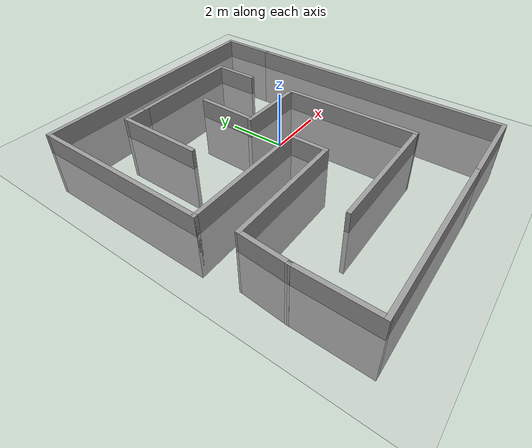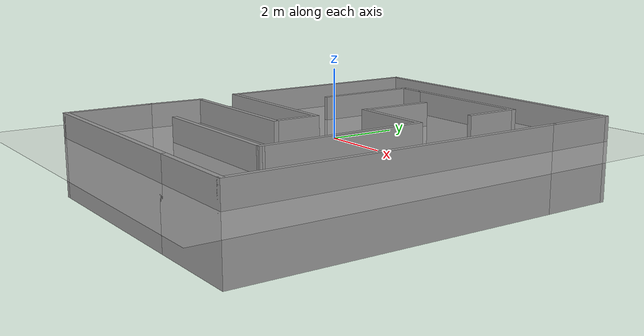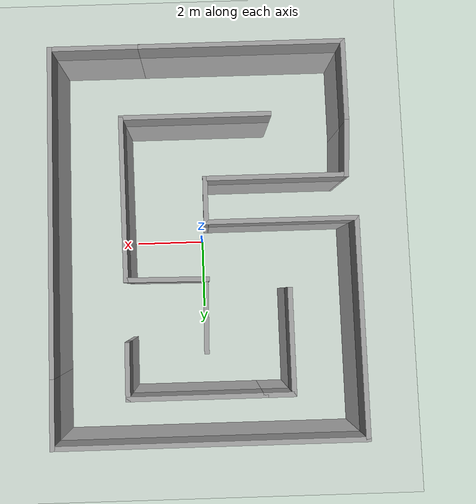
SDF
<sdf version="1.7">
 <world name="default">
  <light name="sun" type="directional">
   <pose>0 0 10 0 -0 0</pose>
   <diffuse>0.8 0.8 0.8 1</diffuse>
   <specular>0.2 0.2 0.2 1</specular>
   <attenuation>
    <range>1000</range>
    <constant>0.9</constant>
    <linear>0.01</linear>
    <quadratic>0.001</quadratic>
   </attenuation>
   <direction>-0.5 0.1 -0.9</direction>
   <spot><inner_angle>0</inner_angle><outer_angle>0</outer_angle><falloff>0</falloff></spot>
  </light>
  <model name="ground_plane">
   <static>1</static>
   <link name="link">
    <collision name="collision">
     <geometry><plane><normal>0 0 1</normal><size>100 100</size></plane></geometry>
     <surface>
      <contact><collide_bitmask>65535</collide_bitmask></contact>
      <friction><ode><mu>100</mu><mu2>50</mu2></ode></friction>
     </surface>
    </collision>
    <visual name="visual">
     <cast_shadows>0</cast_shadows>
     <geometry><plane><normal>0 0 1</normal><size>100 100</size></plane></geometry>
     <material>
      <script><uri>file://media/materials/scripts/gazebo.material</uri><name>Gazebo/Grey</name></script>
     </material>
    </visual>
   </link>
  </model>
  <gravity>0 0 -9.8</gravity>
  <magnetic_field>6e-06 2.3e-05 -4.2e-05</magnetic_field>
  <atmosphere type="adiabatic"/>
  <physics type="ode">
   <max_step_size>0.001</max_step_size>
   <real_time_factor>1</real_time_factor>
   <real_time_update_rate>1000</real_time_update_rate>
  </physics>
  <scene><ambient>0.4 0.4 0.4 1</ambient><background>0.7 0.7 0.7 1</background><shadows>1</shadows></scene>
  <spherical_coordinates>
   <surface_model>EARTH_WGS84</surface_model>
   <latitude_deg>0</latitude_deg>
   <longitude_deg>0</longitude_deg>
   <elevation>0</elevation>
   <heading_deg>0</heading_deg>
  </spherical_coordinates>
  <model name="first_track">
   <pose>-0.063004 -0.050072 -1.78997 0 -0 0</pose>
   <link name="Wall_1">
    <collision name="Wall_1_Collision">
     <geometry><box><size>2.75 0.15 2.5</size></box></geometry>
     <pose>0 0 1.25 0 -0 0</pose>
    </collision>
    <visual name="Wall_1_Visual">
     <pose>0 0 1.25 0 -0 0</pose>
     <geometry><box><size>2.75 0.15 2.5</size></box></geometry>
     <material>
      <script><uri>file://media/materials/scripts/gazebo.material</uri><name>Gazebo/Grey</name></script>
      <ambient>1 1 1 1</ambient>
     </material>
     <meta><layer>0</layer></meta>
    </visual>
    <pose>-4.525 -4.8 0 0 -0 -1.5708</pose>
   </link>
   <link name="Wall_19">
    <collision name="Wall_19_Collision">
     <geometry><box><size>5.18013 0.15 2.5</size></box></geometry>
     <pose>0 0 1.25 0 -0 0</pose>
    </collision>
    <visual name="Wall_19_Visual">
     <pose>0 0 1.25 0 -0 0</pose>
     <geometry><box><size>5.18013 0.15 2.5</size></box></geometry>
     <material>
      <script><uri>file://media/materials/scripts/gazebo.material</uri><name>Gazebo/Grey</name></script>
      <ambient>1 1 1 1</ambient>
     </material>
     <meta><layer>0</layer></meta>
    </visual>
    <pose>2.44585 -1.31908 0 0 -0 1.58478</pose>
   </link>
   <link name="Wall_2">
    <collision name="Wall_2_Collision">
     <geometry><box><size>6.5 0.15 2.5</size></box></geometry>
     <pose>0 0 1.25 0 -0 0</pose>
    </collision>
    <visual name="Wall_2_Visual">
     <pose>0 0 1.25 0 -0 0</pose>
     <geometry><box><size>6.5 0.15 2.5</size></box></geometry>
     <material>
      <script><uri>file://media/materials/scripts/gazebo.material</uri><name>Gazebo/Grey</name></script>
      <ambient>1 1 1 1</ambient>
     </material>
     <meta><layer>0</layer></meta>
    </visual>
    <pose>-1.35 -6.1 0 0 -0 0</pose>
   </link>
   <link name="Wall_20">
    <collision name="Wall_20_Collision">
     <geometry><box><size>2.57061 0.15 2.5</size></box></geometry>
     <pose>0 0 1.25 0 -0 0</pose>
    </collision>
    <visual name="Wall_20_Visual">
     <pose>0 0 1.25 0 -0 0</pose>
     <geometry><box><size>2.57061 0.15 2.5</size></box></geometry>
     <material>
      <script><uri>file://media/materials/scripts/gazebo.material</uri><name>Gazebo/Grey</name></script>
      <ambient>1 1 1 1</ambient>
     </material>
     <meta><layer>0</layer></meta>
    </visual>
    <pose>1.16531 1.21334 0 0 -0 3.12706</pose>
   </link>
   <link name="Wall_21">
    <collision name="Wall_21_Collision">
     <geometry><box><size>2.32064 0.15 2.5</size></box></geometry>
     <pose>0 0 1.25 0 -0 0</pose>
    </collision>
    <visual name="Wall_21_Visual">
     <pose>0 0 1.25 0 -0 0</pose>
     <geometry><box><size>2.32064 0.15 2.5</size></box></geometry>
     <material>
      <script><uri>file://media/materials/scripts/gazebo.material</uri><name>Gazebo/Grey</name></script>
      <ambient>1 1 1 1</ambient>
     </material>
     <meta><layer>0</layer></meta>
    </visual>
    <pose>0.007903 2.3161 0 0 -0 1.55459</pose>
   </link>
   <link name="Wall_23">
    <collision name="Wall_23_Collision">
     <geometry><box><size>1.75 0.15 2.5</size></box></geometry>
     <pose>0 0 1.25 0 -0 0</pose>
    </collision>
    <visual name="Wall_23_Visual">
     <pose>0 0 1.25 0 -0 0</pose>
     <geometry><box><size>1.75 0.15 2.5</size></box></geometry>
     <material>
      <script><uri>file://media/materials/scripts/gazebo.material</uri><name>Gazebo/Grey</name></script>
      <ambient>1 1 1 1</ambient>
     </material>
     <meta><layer>0</layer></meta>
    </visual>
    <pose>2.41067 3.9315 0 0 -0 1.5708</pose>
   </link>
   <link name="Wall_24">
    <collision name="Wall_24_Collision">
     <geometry><box><size>4.25 0.15 2.5</size></box></geometry>
     <pose>0 0 1.25 0 -0 0</pose>
    </collision>
    <visual name="Wall_24_Visual">
     <pose>0 0 1.25 0 -0 0</pose>
     <geometry><box><size>4.25 0.15 2.5</size></box></geometry>
     <material>
      <script><uri>file://media/materials/scripts/gazebo.material</uri><name>Gazebo/Grey</name></script>
      <ambient>1 1 1 1</ambient>
     </material>
     <meta><layer>0</layer></meta>
    </visual>
    <pose>0.360671 4.7315 0 0 -0 3.14159</pose>
   </link>
   <link name="Wall_26">
    <collision name="Wall_26_Collision">
     <geometry><box><size>1 0.15 2.5</size></box></geometry>
     <pose>0 0 1.25 0 -0 0</pose>
    </collision>
    <visual name="Wall_26_Visual">
     <pose>0 0 1.25 0 -0 0</pose>
     <geometry><box><size>1 0.15 2.5</size></box></geometry>
     <material>
      <script><uri>file://media/materials/scripts/gazebo.material</uri><name>Gazebo/Grey</name></script>
      <ambient>1 1 1 1</ambient>
     </material>
     <meta><layer>0</layer></meta>
    </visual>
    <pose>-2.11433 4.7315 0 0 -0 3.14159</pose>
   </link>
   <link name="Wall_29">
    <collision name="Wall_29_Collision">
     <geometry><box><size>3.25 0.15 2.5</size></box></geometry>
     <pose>0 0 1.25 0 -0 0</pose>
    </collision>
    <visual name="Wall_29_Visual">
     <pose>0 0 1.25 0 -0 0</pose>
     <geometry><box><size>3.25 0.15 2.5</size></box></geometry>
     <material>
      <script><uri>file://media/materials/scripts/gazebo.material</uri><name>Gazebo/Grey</name></script>
      <ambient>1 1 1 1</ambient>
     </material>
     <meta><layer>0</layer></meta>
    </visual>
    <pose>-2.53933 3.1815 0 0 -0 -1.5708</pose>
   </link>
   <link name="Wall_3">
    <collision name="Wall_3_Collision">
     <geometry><box><size>3 0.15 2.5</size></box></geometry>
     <pose>0 0 1.25 0 -0 0</pose>
    </collision>
    <visual name="Wall_3_Visual">
     <pose>0 0 1.25 0 -0 0</pose>
     <geometry><box><size>3 0.15 2.5</size></box></geometry>
     <material>
      <script><uri>file://media/materials/scripts/gazebo.material</uri><name>Gazebo/Grey</name></script>
      <ambient>1 1 1 1</ambient>
     </material>
     <meta><layer>0</layer></meta>
    </visual>
    <pose>3.25 -6.1 0 0 -0 0</pose>
   </link>
   <link name="Wall_31">
    <collision name="Wall_31_Collision">
     <geometry><box><size>6.75 0.15 2.5</size></box></geometry>
     <pose>0 0 1.25 0 -0 0</pose>
    </collision>
    <visual name="Wall_31_Visual">
     <pose>0 0 1.25 0 -0 0</pose>
     <geometry><box><size>6.75 0.15 2.5</size></box></geometry>
     <material>
      <script><uri>file://media/materials/scripts/gazebo.material</uri><name>Gazebo/Grey</name></script>
      <ambient>1 1 1 1</ambient>
     </material>
     <meta><layer>0</layer></meta>
    </visual>
    <pose>-4.675 2.8 0 0 -0 -1.5708</pose>
   </link>
   <link name="Wall_32">
    <collision name="Wall_32_Collision">
     <geometry><box><size>4.75 0.15 2.5</size></box></geometry>
     <pose>0 0 1.25 0 -0 0</pose>
    </collision>
    <visual name="Wall_32_Visual">
     <pose>0 0 1.25 0 -0 0</pose>
     <geometry><box><size>4.75 0.15 2.5</size></box></geometry>
     <material>
      <script><uri>file://media/materials/scripts/gazebo.material</uri><name>Gazebo/Grey</name></script>
      <ambient>1 1 1 1</ambient>
     </material>
     <meta><layer>0</layer></meta>
    </visual>
    <pose>-2.375 -0.5 0 0 -0 0</pose>
   </link>
   <link name="Wall_33">
    <collision name="Wall_33_Collision">
     <geometry><box><size>1.5 0.15 2.5</size></box></geometry>
     <pose>0 0 1.25 0 -0 0</pose>
    </collision>
    <visual name="Wall_33_Visual">
     <pose>0 0 1.25 0 -0 0</pose>
     <geometry><box><size>1.5 0.15 2.5</size></box></geometry>
     <material>
      <script><uri>file://media/materials/scripts/gazebo.material</uri><name>Gazebo/Grey</name></script>
      <ambient>1 1 1 1</ambient>
     </material>
     <meta><layer>0</layer></meta>
    </visual>
    <pose>-0.075 -1.175 0 0 -0 -1.5708</pose>
   </link>
   <link name="Wall_34">
    <collision name="Wall_34_Collision">
     <geometry><box><size>4.5 0.15 2.5</size></box></geometry>
     <pose>0 0 1.25 0 -0 0</pose>
    </collision>
    <visual name="Wall_34_Visual">
     <pose>0 0 1.25 0 -0 0</pose>
     <geometry><box><size>4.5 0.15 2.5</size></box></geometry>
     <material>
      <script><uri>file://media/materials/scripts/gazebo.material</uri><name>Gazebo/Grey</name></script>
      <ambient>1 1 1 1</ambient>
     </material>
     <meta><layer>0</layer></meta>
    </visual>
    <pose>-2.25 -1.85 0 0 -0 3.14159</pose>
   </link>
   <link name="Wall_35">
    <collision name="Wall_35_Collision">
     <geometry><box><size>1.80303 0.15 2.5</size></box></geometry>
     <pose>0 0 1.25 0 -0 0</pose>
    </collision>
    <visual name="Wall_35_Visual">
     <pose>0 0 1.25 0 -0 0</pose>
     <geometry><box><size>1.80303 0.15 2.5</size></box></geometry>
     <material>
      <script><uri>file://media/materials/scripts/gazebo.material</uri><name>Gazebo/Grey</name></script>
      <ambient>1 1 1 1</ambient>
     </material>
     <meta><layer>0</layer></meta>
    </visual>
    <pose>-4.475 -2.675 0 0 -0 -1.63133</pose>
   </link>
   <link name="Wall_37">
    <collision name="Wall_37_Collision">
     <geometry><box><size>4.75 0.15 2.5</size></box></geometry>
     <pose>0 0 1.25 0 -0 0</pose>
    </collision>
    <visual name="Wall_37_Visual">
     <pose>0 0 1.25 0 -0 0</pose>
     <geometry><box><size>4.75 0.15 2.5</size></box></geometry>
     <material>
      <script><uri>file://media/materials/scripts/gazebo.material</uri><name>Gazebo/Grey</name></script>
      <ambient>1 1 1 1</ambient>
     </material>
     <meta><layer>0</layer></meta>
    </visual>
    <pose>0.181028 -3.8339 0 0 -0 3.14159</pose>
   </link>
   <link name="Wall_5">
    <collision name="Wall_5_Collision">
     <geometry><box><size>10.25 0.15 2.5</size></box></geometry>
     <pose>0 0 1.25 0 -0 0</pose>
    </collision>
    <visual name="Wall_5_Visual">
     <pose>0 0 1.25 0 -0 0</pose>
     <geometry><box><size>10.25 0.15 2.5</size></box></geometry>
     <material>
      <script><uri>file://media/materials/scripts/gazebo.material</uri><name>Gazebo/Grey</name></script>
      <ambient>1 1 1 1</ambient>
     </material>
     <meta><layer>0</layer></meta>
    </visual>
    <pose>4.675 -1.05 0 0 -0 1.5708</pose>
   </link>
   <link name="Wall_6">
    <collision name="Wall_6_Collision">
     <geometry><box><size>2.25 0.15 2.5</size></box></geometry>
     <pose>0 0 1.25 0 -0 0</pose>
    </collision>
    <visual name="Wall_6_Visual">
     <pose>0 0 1.25 0 -0 0</pose>
     <geometry><box><size>2.25 0.15 2.5</size></box></geometry>
     <material>
      <script><uri>file://media/materials/scripts/gazebo.material</uri><name>Gazebo/Grey</name></script>
      <ambient>1 1 1 1</ambient>
     </material>
     <meta><layer>0</layer></meta>
    </visual>
    <pose>4.675 5.05 0 0 -0 1.5708</pose>
   </link>
   <link name="Wall_7">
    <collision name="Wall_7_Collision">
     <geometry><box><size>9.5 0.15 2.5</size></box></geometry>
     <pose>0 0 1.25 0 -0 0</pose>
    </collision>
    <visual name="Wall_7_Visual">
     <pose>0 0 1.25 0 -0 0</pose>
     <geometry><box><size>9.5 0.15 2.5</size></box></geometry>
     <material>
      <script><uri>file://media/materials/scripts/gazebo.material</uri><name>Gazebo/Grey</name></script>
      <ambient>1 1 1 1</ambient>
     </material>
     <meta><layer>0</layer></meta>
    </visual>
    <pose>0 6.1 0 0 -0 3.14159</pose>
   </link>
   <static>1</static>
  </model>
 </world>
</sdf>
